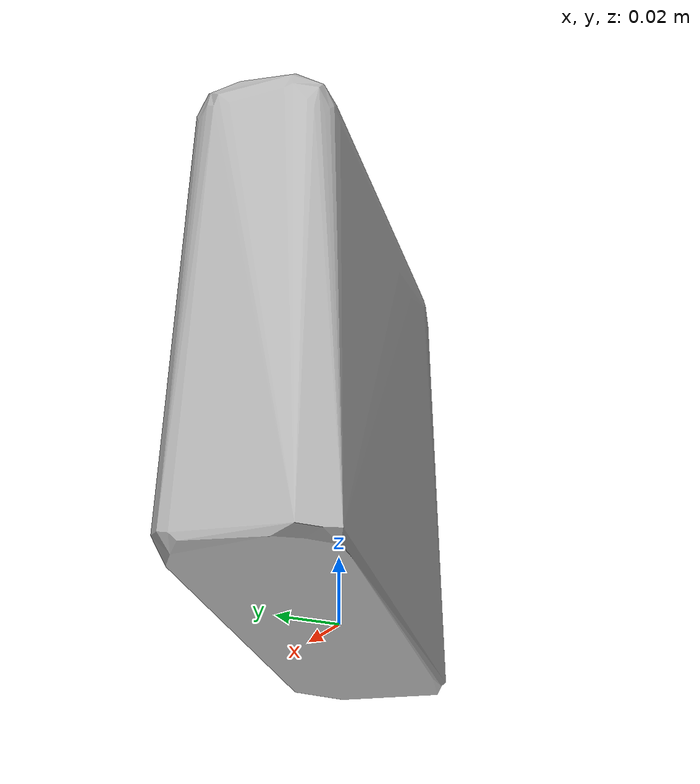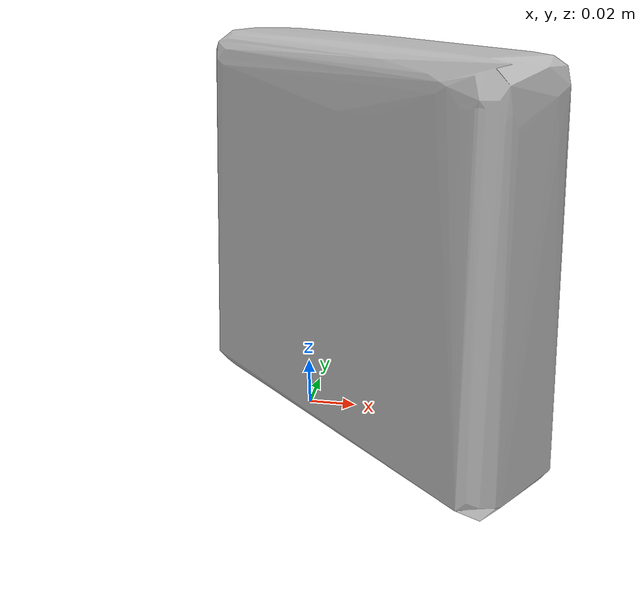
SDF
<?xml version='1.0'?>
<sdf version="1.4">
  <model name="quaker_big_chewy_chocolate_chip">
    <static>false</static>
    <link name="link">
      <inertial>
        <pose>0.025739718596138102 -0.007080481856765379 0.0780875564640283 1.6819747133608756 0.01305819026583791 -2.284277644438502</pose>
        <mass>0.11534278675957564</mass>
        <inertia>
          <ixx>0.0004575372783970464</ixx>
          <ixy>2.1440759880865003e-21</ixy>
          <ixz>-6.343722496039853e-20</ixz>
          <iyy>0.0002670211722979993</iyy>
          <iyz>-1.5696369244972064e-21</iyz>
          <izz>0.0002343204411528904</izz>
        </inertia>
      </inertial>
      <collision name="collision">
        <geometry>
          <mesh>
            <!-- Use a downsampled mesh for collisions -->
            <uri>model:///quaker_big_chewy_chocolate_chip/quaker_big_chewy_chocolate_chip_250_collision.obj</uri>
	        </mesh>
        </geometry>
        <surface>
      </surface>
      </collision>
      <visual name="visual">
        <geometry>
          <mesh>
            <uri>model:///quaker_big_chewy_chocolate_chip/optimized_tsdf_texture_mapped_mesh.obj</uri>
	        </mesh>
        </geometry>
        <material>
          <script>
            <uri>model:///quaker_big_chewy_chocolate_chip/quaker_big_chewy_chocolate_chip.material</uri>
            <name>quaker_big_chewy_chocolate_chip</name>
          </script>
        </material>
      </visual>
    </link>
  </model>
</sdf>
